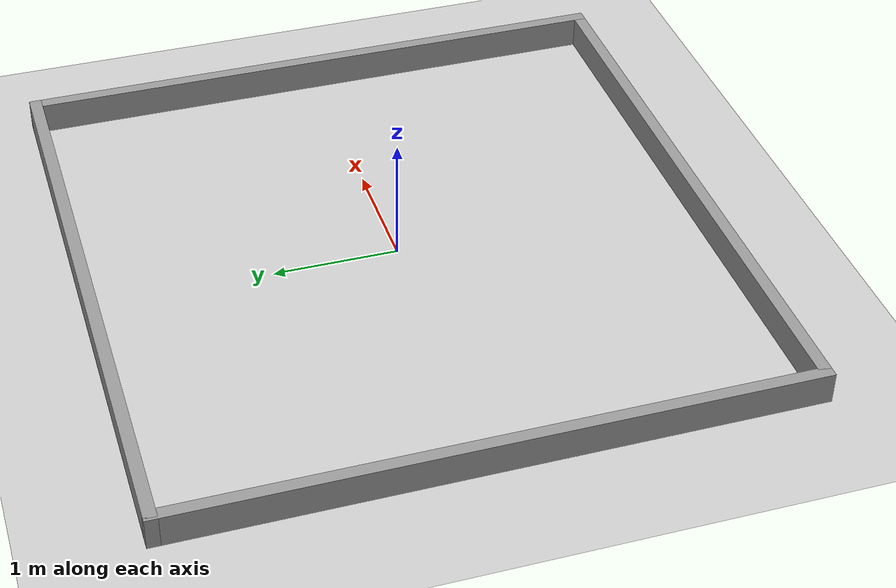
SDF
<sdf version="1.7">
 <world name="default">
  <include><uri>model://ground_plane</uri></include>
  <include><uri>model://sun</uri></include>
  <include><uri>model://smallminefield</uri><name>smallminefield</name></include>
 </world>
</sdf>

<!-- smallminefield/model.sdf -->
<sdf version='1.7'>

  <model name='smallminefield'>
    <pose>0 0 0 0 -0 0</pose>
    <link name='Wall_1'>
      <collision name='Wall_1_Collision'>
        <geometry>
          <box>
            <size>5 0.10 0.5</size>
          </box>
        </geometry>
        <pose> 0 2.5 0 0 -0 0</pose>
      </collision>
      <visual name='Wall_1_Visual'>
        <pose>0 2.5 0 0 -0 0</pose>
        <geometry>
          <box>
            <size>5 0.10 0.5</size>
          </box>
        </geometry>
        <material>
          <script>
            <uri>file://media/materials/scripts/gazebo.material</uri>
            <name>Gazebo/Grey</name>
          </script>
          <ambient>1 1 1 1</ambient>
        </material>
        <meta>
          <layer>0</layer>
        </meta>
      </visual>
      <pose>0 0 0 0 -0 -1.5708</pose>
    </link>
    <link name='Wall_2'>
      <collision name='Wall_2_Collision'>
        <geometry>
          <box>
            <size>5 0.10 0.5</size>
          </box>
        </geometry>
        <pose>0 -2.5 0 0 -0 0</pose>
      </collision>
      <visual name='Wall_2_Visual'>
        <pose>0 -2.5 0 0 -0 0</pose>
        <geometry>
          <box>
            <size>5 0.10 0.5</size>
          </box>
        </geometry>
        <material>
          <script>
            <uri>file://media/materials/scripts/gazebo.material</uri>
            <name>Gazebo/Grey</name>
          </script>
          <ambient>1 1 1 1</ambient>
        </material>
        <meta>
          <layer>0</layer>
        </meta>
      </visual>
      <pose>0 0 0 0 -0 -1.5708</pose>
    </link>
    <link name='Wall_3'>
      <collision name='Wall_3_Collision'>
        <geometry>
          <box>
            <size>0.10 5.10 0.5</size>
          </box>
        </geometry>
        <pose>0 2.45 0 0 -0 -1.5708</pose>
      </collision>
      <visual name='Wall_3_Visual'>
        <pose>0 2.45 0 0 -0 -1.5708</pose>
        <geometry>
          <box>
            <size>0.10 5.10 0.5</size>
          </box>
        </geometry>
        <material>
          <script>
            <uri>file://media/materials/scripts/gazebo.material</uri>
            <name>Gazebo/Grey</name>
          </script>
          <ambient>1 1 1 1</ambient>
        </material>
        <meta>
          <layer>0</layer>
        </meta>
      </visual>
      <pose>-0 0 0 0 0 0</pose>
    </link>
    <link name='Wall_4'>
      <collision name='Wall_4_Collision'>
        <geometry>
          <box>
            <size>0.10 5.10 0.5</size>
          </box>
        </geometry>
        <pose>0 -2.45 0 0 -0 -1.5708</pose>
      </collision>
      <visual name='Wall_4_Visual'>
        <pose>0 -2.45 0 0 -0 -1.5708</pose>
        <geometry>
          <box>
            <size>0.10 5.10 0.5</size>
          </box>
        </geometry>
        <material>
          <script>
            <uri>file://media/materials/scripts/gazebo.material</uri>
            <name>Gazebo/Grey</name>
          </script>
          <ambient>1 1 1 1</ambient>
        </material>
        <meta>
          <layer>0</layer>
        </meta>
      </visual>
      <pose>0 0 0 0 -0 0</pose>
    </link>
    <static>1</static>
  </model>
</sdf>
